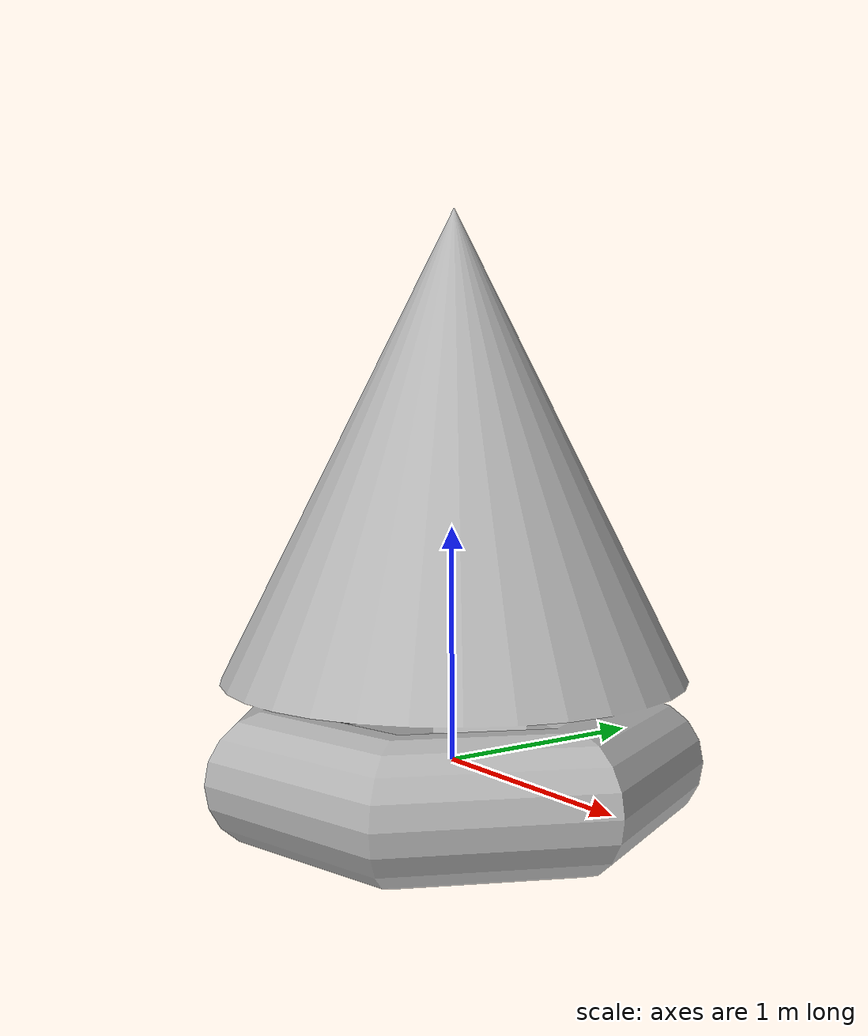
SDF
<?xml version="1.0"?>
<sdf version="1.4">
    <model name="monkey_totem">
        <pose>0 0 0 0 0 0</pose>
        <static>true</static>
        <link name="monkey_totem">
            <visual name="visual">
                <geometry>
                    <mesh>
                       <uri>model://monkey_totem/visual.osg</uri>
                    </mesh>
                </geometry>
            </visual>
            <collision name="collision">
                <geometry>
                    <mesh>
                        <uri>model://monkey_totem/collision.stl</uri>
                    </mesh>
                </geometry>
            </collision>
            <inertial>
                <pose>0 0 -1 0 0 0</pose>
                <inertia>
                    <ixx>0.0</ixx>
                    <ixy>0</ixy>
                    <ixz>0.0</ixz>
                    <iyy>0.0</iyy>
                    <iyz>0</iyz>
                    <izz>0.0</izz>
                </inertia>
                <mass>1.0</mass>
            </inertial>
        </link>
    </model>
</sdf>
